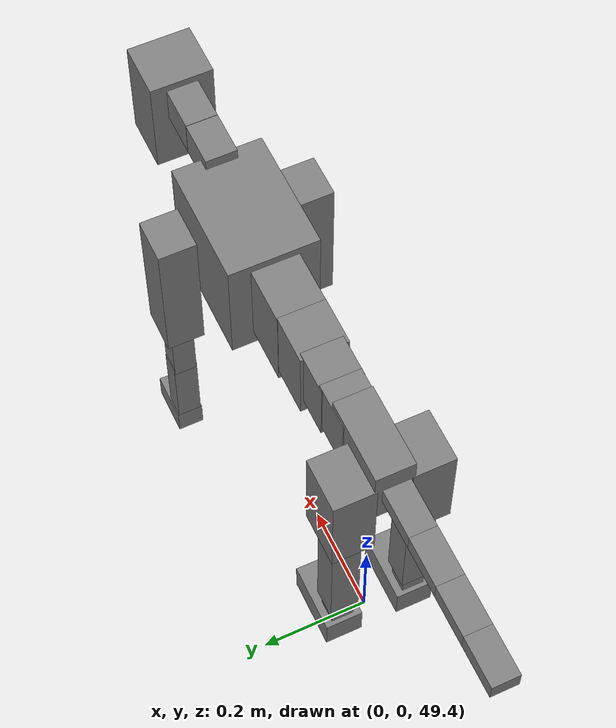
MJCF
<mujoco model="dog">

    <default>
        <joint armature="0.02" stiffness="1" damping="0.2" limited="true"/>
        <geom condim="3" friction="1 0.05 0.05" margin="0.01"/>
        <motor ctrllimited="true" ctrlrange="-1.0 1.0" forcelimited="true" gear="50"/>
    </default>

    <compiler inertiafromgeom="true" angle="radian"/>

    <option timestep="0.016" iterations="50" tolerance="1e-10" solver="Newton" jacobian="dense" cone="pyramidal"/>

    <size nconmax="20000" njmax="60000" nstack="5000000"/>
    <visual>
        <map force="0.1" zfar="30"/>
        <rgba haze="0.15 0.25 0.35 1"/>
        <quality shadowsize="2048"/>
        <global offwidth="800" offheight="800"/>
    </visual>

    <asset>
        <texture type="skybox" builtin="gradient" rgb1="0.3 0.5 0.7" rgb2="0 0 0" width="512" height="512"/>
        <texture name="texplane" type="2d" builtin="checker" rgb1=".2 .3 .4" rgb2=".1 0.15 0.2" width="512" height="512"
                 mark="cross" markrgb=".8 .8 .8"/>
        <texture name="texgeom" type="cube" builtin="flat" mark="cross" width="127" height="1278" rgb1="0.8 0.6 0.4"
                 rgb2="0.8 0.6 0.4" markrgb="1 1 1" random="0.01"/>

        <material name="matplane" reflectance="0.3" texture="texplane" texrepeat="1 1" texuniform="true"/>
        <material name="matgeom" texture="texgeom" texuniform="true" rgba="0.8 0.6 .4 1"/>
    </asset>

    <worldbody>
        <geom name="floor" pos="0 0 0" size="0 0 .25" type="plane" material="matplane" condim="3"/>

        <light directional="false" diffuse=".2 .2 .2" specular="0 0 0" pos="0 0 5" dir="0 0 -1" castshadow="false"/>
        <light mode="targetbodycom" target="torso" directional="false" diffuse=".8 .8 .8" specular="0.3 0.3 0.3"
               pos="0 0 4.0" dir="0 0 -1"/>

        <body name="root" pos="0 0 50">
            <freejoint name="root_1"/>
            <geom type="box" pos="0 0 -0.02" size="0.0774  0.0358  0.063" density="2030"/>

            <body name="spine1" pos="0.054 0 0">
                <joint name="spine1_y" axis="0 1 0" range="0 0.7" limited="true"/>
                <geom type="box" pos="0.02375 0 -0.03" size="0.04375  0.0375  0.05985" density="2030"/>

                <body name="spine2" pos="0.0612 0 0">
                    <joint name="spine2_y" axis="0 1 0" range="-0.15 0.15" limited="true"/>
                    <geom type="box" pos="0.03555  0  -0.04" size="0.04055  0.039  0.06615" density="2030"/>

                    <body name="spine3" pos="0.0730 0 0">
                        <joint name="spine3_y" axis="0 1 0" range="-0.15 0.15" limited="true"/>
                        <geom type="box" pos="0.03555  0  -0.057" size="0.04555  0.0445  0.081" density="2030"/>

                        <body name="spine4" pos="0.0780 0 0">
                            <joint name="spine4_y" axis="0 1 0" range="-0.15 0.15" limited="true"/>
                            <geom type="box" pos="0.05265  0  -0.07" size="0.05265  0.045  0.09135" density="2030"/>

                            <body name="torso" pos="0.1082 0 0">
                                <joint name="torso_y" axis="0 1 0" range="-0.15 0.15" limited="true"/>
                                <geom type="box" pos="0.11925  0  -0.085" size="0.11925  0.085  0.11745"
                                      density="2030"/>

                                <body name="neck1" pos="0.2160  0   0.0180">
                                    <joint name="neck1_y" axis="0 1 0" range="-1.2  -1" limited="true"/>
                                    <geom type="box" pos="0.0423  0  0" size="0.0423  0.03  0.036" density="2325"/>

                                    <body name="neck2" pos="0.0853  0  0">
                                        <joint name="neck2_y" axis="0 1 0" range="0.1  0" limited="true"/>
                                        <geom type="box" pos="0.0423  0  0" size="0.0423  0.03  0.036" density="2325"/>

                                        <body name="head" pos="0.0853  0  0">
                                            <joint name="head_y" axis="0 1 0" range="-0.3  -0.2" limited="true"/>
                                            <geom type="box" pos="0.0531  0  -0.055" size="0.0531  0.06  0.1044"
                                                  density="4030"/>

                                        </body>
                                    </body>
                                </body>

                                <body name="front_shoulder" pos="0.156  0   -0.0480">
                                    <joint name="front_shoulder_y" axis="0 1 0" range="-1 1.5" limited="true"/>
                                    <geom type="box" pos="0 0.13 -0.1175" size="0.0419  0.0358  0.1442" density="1158"/>
                                    <geom type="box" pos="0 -0.13 -0.1175" size="0.0419  0.0358  0.1442"
                                          density="1158"/>

                                    <body name="front_elbow" pos="0  0  -0.2350">
                                        <joint name="front_elbow_y" axis="0 1 0" range="-2 0" limited="true"/>
                                        <geom type="box" pos="0 0.13 -0.0797" size="0.0214  0.0219  0.0797"
                                              density="1081"/>
                                        <geom type="box" pos="0 -0.13 -0.0797" size="0.0214  0.0219  0.0797"
                                              density="1081"/>

                                        <body name="front_wrist" pos="0  0  -0.1594">
                                            <joint name="front_wrist_y" axis="0 1 0" range="-0.2 0" limited="true"/>
                                            <geom type="box" pos="0 0.13 -0.0838" size="0.0206  0.0229  0.0969"
                                                  density="1664"/>
                                            <geom type="box" pos="0 -0.13 -0.0838" size="0.0206  0.0229  0.0969"
                                                  density="1664"/>

                                            <body name="front_finger_end" pos="0  0  -0.1676">
                                                <joint name="front_finger_y" axis="0 1 0" range="-0.4 1"
                                                       limited="true"/>
                                                <geom type="box" pos="0.0252  0.13  -0.0127"
                                                      size="0.0462  0.0252  0.0277" density="1515"/>
                                                <geom type="box" pos="0.0252  -0.13  -0.0127"
                                                      size="0.0462  0.0252  0.0277" density="1515"/>

                                            </body>

                                        </body>
                                    </body>
                                </body>

                            </body>
                        </body>
                    </body>
                </body>
            </body>

            <body name="back_hip" pos="-0.03 0 -0.018">
                <joint name="back_hip_y" axis="0 1 0" range="-1.5 0.3" limited="true"/>
                <geom type="box" pos="0 0.07 -0.0724" size="0.0493  0.0387  0.0952" density="1154"/>
                <geom type="box" pos="0 -0.07 -0.0724" size="0.0493  0.0387  0.0952" density="1154"/>

                <body name="back_knee" pos="0  0  -0.1448">
                    <joint name="back_knee_y" axis="0 1 0" range="0 2.8" limited="true"/>
                    <geom type="box" pos="0 0.07 -0.1376" size="0.0272  0.0268  0.1531" density="1227"/>
                    <geom type="box" pos="0 -0.07 -0.1376" size="0.0272  0.0268  0.1531" density="1227"/>

                    <body name="back_ankle" pos="0  0  -0.2751">
                        <joint name="back_ankle_y" axis="0 1 0" range="-2.2 0" limited="true"/>
                        <geom type="box" pos="0 0.07 -0.0348" size="0.0207  0.0207  0.0460" density="1284"/>
                        <geom type="box" pos="0 -0.07 -0.0348" size="0.0207  0.0207  0.0460" density="1284"/>

                        <body name="back_toe_end" pos="0  0  -0.0696">
                            <joint name="back_toe_y" axis="0 1 0" range="-0.4 1" limited="true"/>
                            <geom type="box" pos="0.0349  0.07  -0.0167" size="0.0640  0.0349  0.0317" density="1515"/>
                            <geom type="box" pos="0.0349  -0.07  -0.0167" size="0.0640  0.0349  0.0317" density="1515"/>

                        </body>
                    </body>
                </body>
            </body>

            <body name="tail1" pos="-0.074 0 -0.006">
                <joint name="tail1_y" axis="0 1 0" range="-0.2 0.2" limited="true"/>
                <geom type="box" pos="-0.0536  0  0" size="0.045  0.025  0.0175" density="1587"/>

                <body name="tail2" pos="-0.09 0 0">
                    <joint name="tail2_y" axis="0 1 0" range="-0.2 0.2" limited="true"/>
                    <geom type="box" pos="-0.0536  0  0" size="0.045  0.025  0.0175" density="1587"/>

                    <body name="tail3" pos="-0.09 0 0">
                        <joint name="tail3_y" axis="0 1 0" range="-0.2 0.2" limited="true"/>
                        <geom type="box" pos="-0.0536  0  0" size="0.045  0.025  0.0175" density="1587"/>

                        <body name="tail4" pos="-0.09 0 0">
                            <joint name="tail4_y" axis="0 1 0" range="-0.2 0.2" limited="true"/>
                            <geom type="box" pos="-0.0536  0  0" size="0.045  0.025  0.0175" density="1587"/>

                        </body>
                    </body>
                </body>
            </body>
        </body>
    </worldbody>

    <actuator>
        <motor joint="spine1_y" forcerange="-150 150     "/>
        <motor joint="spine2_y" forcerange="-150 150     "/>
        <motor joint="spine3_y" forcerange="-150 150     "/>
        <motor joint="spine4_y" forcerange="-150 150     "/>
        <motor joint="torso_y" forcerange="-150 150     "/>
        <motor joint="neck1_y" forcerange="-100 100       "/>
        <motor joint="neck2_y" forcerange="-100 100       "/>
        <motor joint="head_y" forcerange="-150 150       "/>
        <motor joint="front_shoulder_y" forcerange="-176.40 162.08"/>
        <motor joint="front_elbow_y" forcerange="-149.05 109.94"/>
        <motor joint="front_wrist_y" forcerange="-90.94 92.46"/>
        <motor joint="front_finger_y" forcerange="-33.03 61.49"/>
        <motor joint="back_hip_y" forcerange="-382.91 333.00"/>
        <motor joint="back_knee_y" forcerange="-297.62 291.99"/>
        <motor joint="back_angle_y" forcerange="-94.31 136.15"/>
        <motor joint="back_toe_y" forcerange="-66.84 132.60"/>
        <motor joint="tail1_y" forcerange="-50 50     "/>
        <motor joint="tail2_y" forcerange="-50 50     "/>
        <motor joint="tail3_y" forcerange="-50 50     "/>
        <motor joint="tail4_y" forcerange="-50 50     "/>
    </actuator>
</mujoco>
